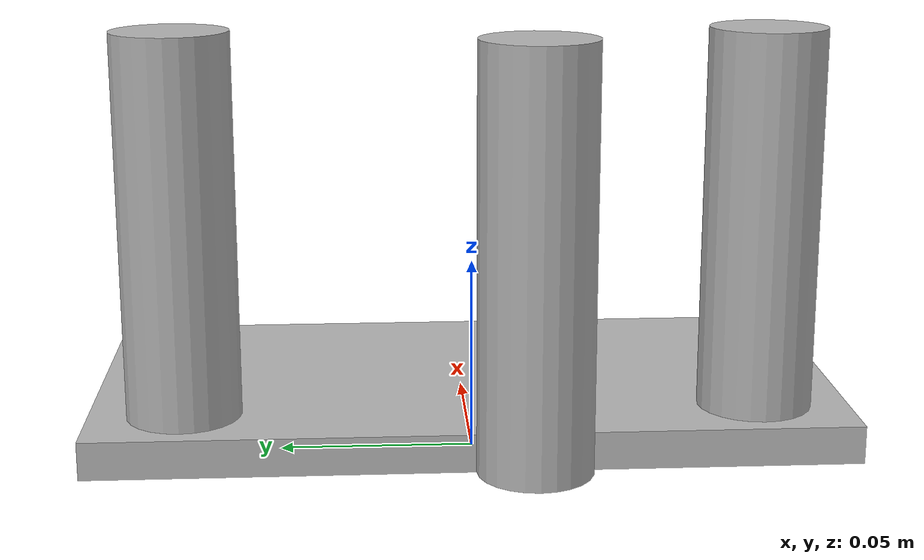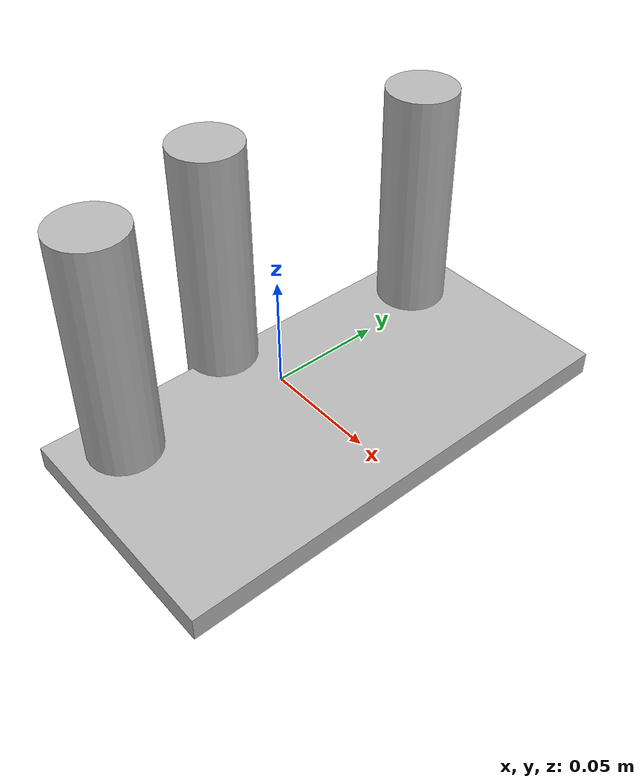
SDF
<?xml version="1.0"?>
<sdf version="1.9">
  <model name="dock">
    <static>true</static>
    <link name="body">
      <!-- Base plate. Below the scan plane, so it contributes no returns. -->
      <visual name="plate_visual">
        <pose>0.03 0 0.005 0 0 0</pose>
        <geometry><box><size>0.10 0.20 0.01</size></box></geometry>
      </visual>
      <collision name="plate_collision">
        <pose>0.03 0 0.005 0 0 0</pose>
        <geometry><box><size>0.10 0.20 0.01</size></box></geometry>
      </collision>

      <visual name="post_l_visual">
        <pose>0 -0.075 0.055 0 0 0</pose>
        <geometry><cylinder><radius>0.015</radius><length>0.11</length></cylinder></geometry>
      </visual>
      <collision name="post_l_collision">
        <pose>0 -0.075 0.055 0 0 0</pose>
        <geometry><cylinder><radius>0.015</radius><length>0.11</length></cylinder></geometry>
      </collision>

      <visual name="post_m_visual">
        <pose>-0.020 -0.015 0.055 0 0 0</pose>
        <geometry><cylinder><radius>0.015</radius><length>0.11</length></cylinder></geometry>
      </visual>
      <collision name="post_m_collision">
        <pose>-0.020 -0.015 0.055 0 0 0</pose>
        <geometry><cylinder><radius>0.015</radius><length>0.11</length></cylinder></geometry>
      </collision>

      <visual name="post_r_visual">
        <pose>0 0.075 0.055 0 0 0</pose>
        <geometry><cylinder><radius>0.015</radius><length>0.11</length></cylinder></geometry>
      </visual>
      <collision name="post_r_collision">
        <pose>0 0.075 0.055 0 0 0</pose>
        <geometry><cylinder><radius>0.015</radius><length>0.11</length></cylinder></geometry>
      </collision>
    </link>
  </model>
</sdf>
